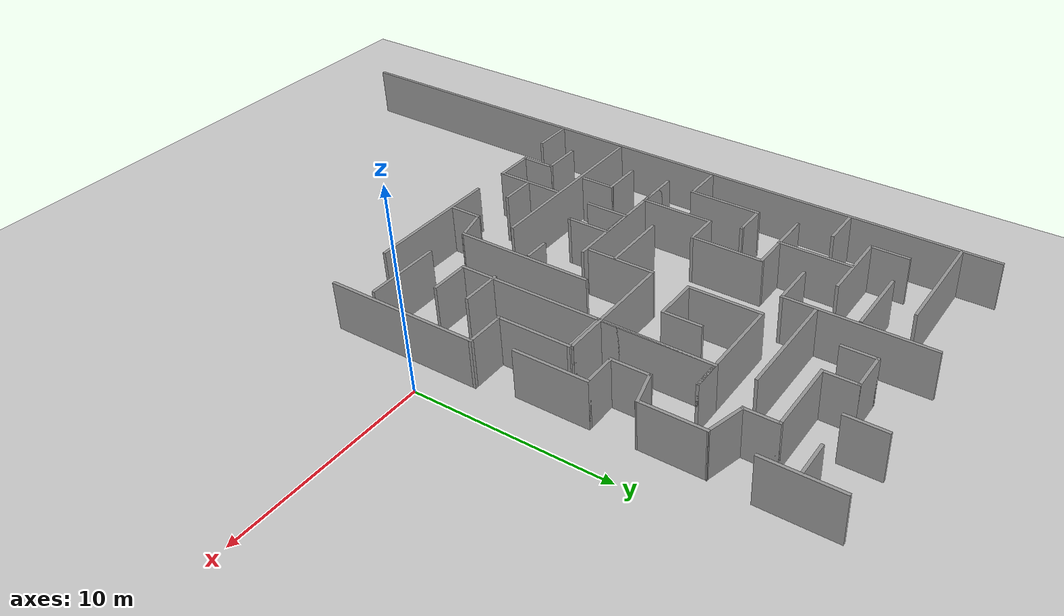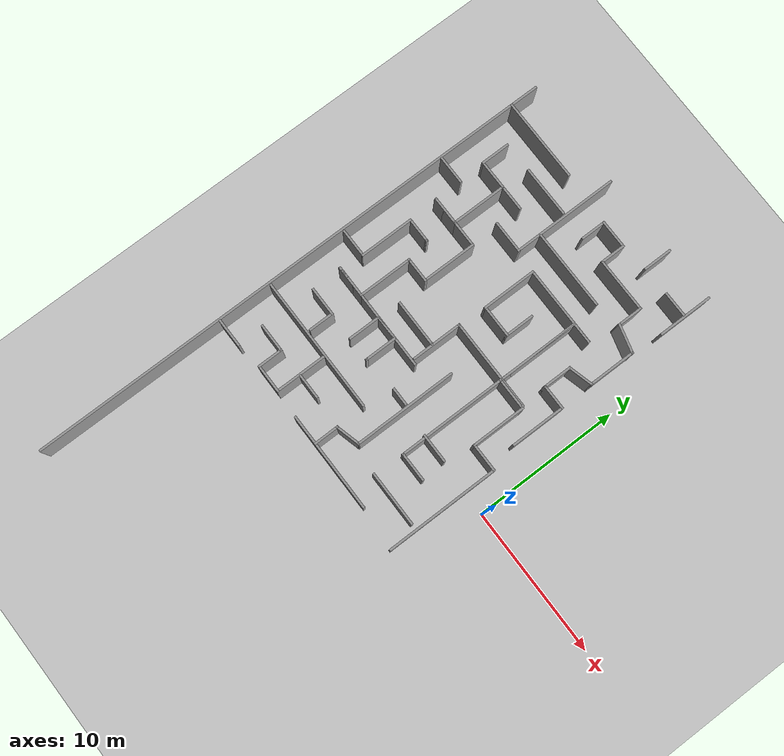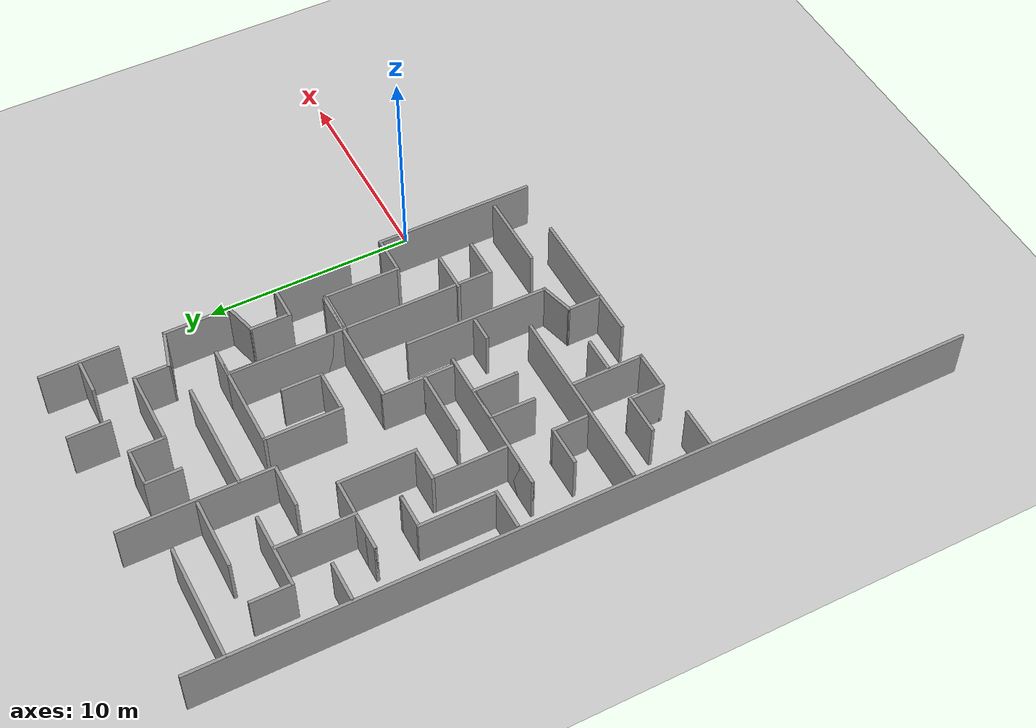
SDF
<sdf version="1.7">
 <world name="default">
  <model name="ground_plane">
   <static>1</static>
   <link name="link">
    <collision name="collision">
     <geometry><plane><normal>0 0 1</normal><size>100 100</size></plane></geometry>
     <surface>
      <contact><collide_bitmask>65535</collide_bitmask></contact>
      <friction><ode><mu>100</mu><mu2>50</mu2></ode></friction>
     </surface>
    </collision>
    <visual name="visual">
     <cast_shadows>0</cast_shadows>
     <geometry><plane><normal>0 0 1</normal><size>100 100</size></plane></geometry>
     <material>
      <script><uri>file://media/materials/scripts/gazebo.material</uri><name>Gazebo/Grey</name></script>
     </material>
    </visual>
   </link>
  </model>
  <model name="maze">
   <pose>-0.086607 -0.007324 0 0 -0 0</pose>
   <link name="Wall_109">
    <collision name="Wall_109_Collision">
     <geometry><box><size>7.75 0.15 2.5</size></box></geometry>
     <pose>0 0 1.25 0 -0 0</pose>
    </collision>
    <visual name="Wall_109_Visual">
     <pose>0 0 1.25 0 -0 0</pose>
     <geometry><box><size>7.75 0.15 2.5</size></box></geometry>
     <material>
      <script><uri>file://media/materials/scripts/gazebo.material</uri><name>Gazebo/Grey</name></script>
      <ambient>1 1 1 1</ambient>
     </material>
     <meta><layer>0</layer></meta>
    </visual>
    <pose>-1.50629 -1.81933 0 0 -0 1.5708</pose>
   </link>
   <link name="Wall_11">
    <collision name="Wall_11_Collision">
     <geometry><box><size>3.75 0.15 2.5</size></box></geometry>
     <pose>0 0 1.25 0 -0 0</pose>
    </collision>
    <visual name="Wall_11_Visual">
     <pose>0 0 1.25 0 -0 0</pose>
     <geometry><box><size>3.75 0.15 2.5</size></box></geometry>
     <material>
      <script><uri>file://media/materials/scripts/gazebo.material</uri><name>Gazebo/Grey</name></script>
      <ambient>1 1 1 1</ambient>
     </material>
     <meta><layer>0</layer></meta>
    </visual>
    <pose>-14.6968 11.1408 0 0 -0 -1.5708</pose>
   </link>
   <link name="Wall_110">
    <collision name="Wall_110_Collision">
     <geometry><box><size>2 0.15 2.5</size></box></geometry>
     <pose>0 0 1.25 0 -0 0</pose>
    </collision>
    <visual name="Wall_110_Visual">
     <pose>0 0 1.25 0 -0 0</pose>
     <geometry><box><size>2 0.15 2.5</size></box></geometry>
     <material>
      <script><uri>file://media/materials/scripts/gazebo.material</uri><name>Gazebo/Grey</name></script>
      <ambient>1 1 1 1</ambient>
     </material>
     <meta><layer>0</layer></meta>
    </visual>
    <pose>-2.43129 1.98067 0 0 -0 3.14159</pose>
   </link>
   <link name="Wall_111">
    <collision name="Wall_111_Collision">
     <geometry><box><size>3.75 0.15 2.5</size></box></geometry>
     <pose>0 0 1.25 0 -0 0</pose>
    </collision>
    <visual name="Wall_111_Visual">
     <pose>0 0 1.25 0 -0 0</pose>
     <geometry><box><size>3.75 0.15 2.5</size></box></geometry>
     <material>
      <script><uri>file://media/materials/scripts/gazebo.material</uri><name>Gazebo/Grey</name></script>
      <ambient>1 1 1 1</ambient>
     </material>
     <meta><layer>0</layer></meta>
    </visual>
    <pose>-3.35629 3.78067 0 0 -0 1.5708</pose>
   </link>
   <link name="Wall_112">
    <collision name="Wall_112_Collision">
     <geometry><box><size>2.25 0.15 2.5</size></box></geometry>
     <pose>0 0 1.25 0 -0 0</pose>
    </collision>
    <visual name="Wall_112_Visual">
     <pose>0 0 1.25 0 -0 0</pose>
     <geometry><box><size>2.25 0.15 2.5</size></box></geometry>
     <material>
      <script><uri>file://media/materials/scripts/gazebo.material</uri><name>Gazebo/Grey</name></script>
      <ambient>1 1 1 1</ambient>
     </material>
     <meta><layer>0</layer></meta>
    </visual>
    <pose>-4.40629 5.58067 0 0 -0 3.14159</pose>
   </link>
   <link name="Wall_113">
    <collision name="Wall_113_Collision">
     <geometry><box><size>5.75 0.15 2.5</size></box></geometry>
     <pose>0 0 1.25 0 -0 0</pose>
    </collision>
    <visual name="Wall_113_Visual">
     <pose>0 0 1.25 0 -0 0</pose>
     <geometry><box><size>5.75 0.15 2.5</size></box></geometry>
     <material>
      <script><uri>file://media/materials/scripts/gazebo.material</uri><name>Gazebo/Grey</name></script>
      <ambient>1 1 1 1</ambient>
     </material>
     <meta><layer>0</layer></meta>
    </visual>
    <pose>-5.45629 8.38067 0 0 -0 1.5708</pose>
   </link>
   <link name="Wall_114">
    <collision name="Wall_114_Collision">
     <geometry><box><size>1.5 0.15 2.5</size></box></geometry>
     <pose>0 0 1.25 0 -0 0</pose>
    </collision>
    <visual name="Wall_114_Visual">
     <pose>0 0 1.25 0 -0 0</pose>
     <geometry><box><size>1.5 0.15 2.5</size></box></geometry>
     <material>
      <script><uri>file://media/materials/scripts/gazebo.material</uri><name>Gazebo/Grey</name></script>
      <ambient>1 1 1 1</ambient>
     </material>
     <meta><layer>0</layer></meta>
    </visual>
    <pose>-4.78129 11.1807 0 0 -0 0</pose>
   </link>
   <link name="Wall_115">
    <collision name="Wall_115_Collision">
     <geometry><box><size>5.5 0.15 2.5</size></box></geometry>
     <pose>0 0 1.25 0 -0 0</pose>
    </collision>
    <visual name="Wall_115_Visual">
     <pose>0 0 1.25 0 -0 0</pose>
     <geometry><box><size>5.5 0.15 2.5</size></box></geometry>
     <material>
      <script><uri>file://media/materials/scripts/gazebo.material</uri><name>Gazebo/Grey</name></script>
      <ambient>1 1 1 1</ambient>
     </material>
     <meta><layer>0</layer></meta>
    </visual>
    <pose>-6.78129 11.1807 0 0 -0 3.14159</pose>
   </link>
   <link name="Wall_116">
    <collision name="Wall_116_Collision">
     <geometry><box><size>3.75 0.15 2.5</size></box></geometry>
     <pose>0 0 1.25 0 -0 0</pose>
    </collision>
    <visual name="Wall_116_Visual">
     <pose>0 0 1.25 0 -0 0</pose>
     <geometry><box><size>3.75 0.15 2.5</size></box></geometry>
     <material>
      <script><uri>file://media/materials/scripts/gazebo.material</uri><name>Gazebo/Grey</name></script>
      <ambient>1 1 1 1</ambient>
     </material>
     <meta><layer>0</layer></meta>
    </visual>
    <pose>-9.45629 9.38067 0 0 -0 -1.5708</pose>
   </link>
   <link name="Wall_117">
    <collision name="Wall_117_Collision">
     <geometry><box><size>2.25 0.15 2.5</size></box></geometry>
     <pose>0 0 1.25 0 -0 0</pose>
    </collision>
    <visual name="Wall_117_Visual">
     <pose>0 0 1.25 0 -0 0</pose>
     <geometry><box><size>2.25 0.15 2.5</size></box></geometry>
     <material>
      <script><uri>file://media/materials/scripts/gazebo.material</uri><name>Gazebo/Grey</name></script>
      <ambient>1 1 1 1</ambient>
     </material>
     <meta><layer>0</layer></meta>
    </visual>
    <pose>-8.40629 7.58067 0 0 -0 0</pose>
   </link>
   <link name="Wall_118">
    <collision name="Wall_118_Collision">
     <geometry><box><size>2 0.15 2.5</size></box></geometry>
     <pose>0 0 1.25 0 -0 0</pose>
    </collision>
    <visual name="Wall_118_Visual">
     <pose>0 0 1.25 0 -0 0</pose>
     <geometry><box><size>2 0.15 2.5</size></box></geometry>
     <material>
      <script><uri>file://media/materials/scripts/gazebo.material</uri><name>Gazebo/Grey</name></script>
      <ambient>1 1 1 1</ambient>
     </material>
     <meta><layer>0</layer></meta>
    </visual>
    <pose>-7.35629 8.50567 0 0 -0 1.5708</pose>
   </link>
   <link name="Wall_12">
    <collision name="Wall_12_Collision">
     <geometry><box><size>2 0.15 2.5</size></box></geometry>
     <pose>0 0 1.25 0 -0 0</pose>
    </collision>
    <visual name="Wall_12_Visual">
     <pose>0 0 1.25 0 -0 0</pose>
     <geometry><box><size>2 0.15 2.5</size></box></geometry>
     <material>
      <script><uri>file://media/materials/scripts/gazebo.material</uri><name>Gazebo/Grey</name></script>
      <ambient>1 1 1 1</ambient>
     </material>
     <meta><layer>0</layer></meta>
    </visual>
    <pose>-15.6218 9.34077 0 0 -0 3.14159</pose>
   </link>
   <link name="Wall_120">
    <collision name="Wall_120_Collision">
     <geometry><box><size>6.75 0.15 2.5</size></box></geometry>
     <pose>0 0 1.25 0 -0 0</pose>
    </collision>
    <visual name="Wall_120_Visual">
     <pose>0 0 1.25 0 -0 0</pose>
     <geometry><box><size>6.75 0.15 2.5</size></box></geometry>
     <material>
      <script><uri>file://media/materials/scripts/gazebo.material</uri><name>Gazebo/Grey</name></script>
      <ambient>1 1 1 1</ambient>
     </material>
     <meta><layer>0</layer></meta>
    </visual>
    <pose>-7.73365 -5.37864 0 0 -0 3.14159</pose>
   </link>
   <link name="Wall_123">
    <collision name="Wall_123_Collision">
     <geometry><box><size>1.75 0.15 2.5</size></box></geometry>
     <pose>0 0 1.25 0 -0 0</pose>
    </collision>
    <visual name="Wall_123_Visual">
     <pose>0 0 1.25 0 -0 0</pose>
     <geometry><box><size>1.75 0.15 2.5</size></box></geometry>
     <material>
      <script><uri>file://media/materials/scripts/gazebo.material</uri><name>Gazebo/Grey</name></script>
      <ambient>1 1 1 1</ambient>
     </material>
     <meta><layer>0</layer></meta>
    </visual>
    <pose>-9.08336 -4.57864 0 0 -0 1.5708</pose>
   </link>
   <link name="Wall_124">
    <collision name="Wall_124_Collision">
     <geometry><box><size>1.75 0.15 2.5</size></box></geometry>
     <pose>0 0 1.25 0 -0 0</pose>
    </collision>
    <visual name="Wall_124_Visual">
     <pose>0 0 1.25 0 -0 0</pose>
     <geometry><box><size>1.75 0.15 2.5</size></box></geometry>
     <material>
      <script><uri>file://media/materials/scripts/gazebo.material</uri><name>Gazebo/Grey</name></script>
      <ambient>1 1 1 1</ambient>
     </material>
     <meta><layer>0</layer></meta>
    </visual>
    <pose>-8.31062 -3.57159 0 0 -0 0.261799</pose>
   </link>
   <link name="Wall_125">
    <collision name="Wall_125_Collision">
     <geometry><box><size>7 0.15 2.5</size></box></geometry>
     <pose>0 0 1.25 0 -0 0</pose>
    </collision>
    <visual name="Wall_125_Visual">
     <pose>0 0 1.25 0 -0 0</pose>
     <geometry><box><size>7 0.15 2.5</size></box></geometry>
     <material>
      <script><uri>file://media/materials/scripts/gazebo.material</uri><name>Gazebo/Grey</name></script>
      <ambient>1 1 1 1</ambient>
     </material>
     <meta><layer>0</layer></meta>
    </visual>
    <pose>-7.53788 0.060469 0 0 -0 1.5708</pose>
   </link>
   <link name="Wall_127">
    <collision name="Wall_127_Collision">
     <geometry><box><size>1.25 0.15 2.5</size></box></geometry>
     <pose>0 0 1.25 0 -0 0</pose>
    </collision>
    <visual name="Wall_127_Visual">
     <pose>0 0 1.25 0 -0 0</pose>
     <geometry><box><size>1.25 0.15 2.5</size></box></geometry>
     <material>
      <script><uri>file://media/materials/scripts/gazebo.material</uri><name>Gazebo/Grey</name></script>
      <ambient>1 1 1 1</ambient>
     </material>
     <meta><layer>0</layer></meta>
    </visual>
    <pose>-8.28864 0.24996 0 0 -0 0</pose>
   </link>
   <link name="Wall_13">
    <collision name="Wall_13_Collision">
     <geometry><box><size>3.75 0.15 2.5</size></box></geometry>
     <pose>0 0 1.25 0 -0 0</pose>
    </collision>
    <visual name="Wall_13_Visual">
     <pose>0 0 1.25 0 -0 0</pose>
     <geometry><box><size>3.75 0.15 2.5</size></box></geometry>
     <material>
      <script><uri>file://media/materials/scripts/gazebo.material</uri><name>Gazebo/Grey</name></script>
      <ambient>1 1 1 1</ambient>
     </material>
     <meta><layer>0</layer></meta>
    </visual>
    <pose>-14.7468 9.34077 0 0 -0 0</pose>
   </link>
   <link name="Wall_130">
    <collision name="Wall_130_Collision">
     <geometry><box><size>3.5 0.15 2.5</size></box></geometry>
     <pose>0 0 1.25 0 -0 0</pose>
    </collision>
    <visual name="Wall_130_Visual">
     <pose>0 0 1.25 0 -0 0</pose>
     <geometry><box><size>3.5 0.15 2.5</size></box></geometry>
     <material>
      <script><uri>file://media/materials/scripts/gazebo.material</uri><name>Gazebo/Grey</name></script>
      <ambient>1 1 1 1</ambient>
     </material>
     <meta><layer>0</layer></meta>
    </visual>
    <pose>-9.57281 4.0051 0 0 -0 1.5708</pose>
   </link>
   <link name="Wall_131">
    <collision name="Wall_131_Collision">
     <geometry><box><size>6.25 0.15 2.5</size></box></geometry>
     <pose>0 0 1.25 0 -0 0</pose>
    </collision>
    <visual name="Wall_131_Visual">
     <pose>0 0 1.25 0 -0 0</pose>
     <geometry><box><size>6.25 0.15 2.5</size></box></geometry>
     <material>
      <script><uri>file://media/materials/scripts/gazebo.material</uri><name>Gazebo/Grey</name></script>
      <ambient>1 1 1 1</ambient>
     </material>
     <meta><layer>0</layer></meta>
    </visual>
    <pose>-6.5228 5.6801 0 0 -0 0</pose>
   </link>
   <link name="Wall_132">
    <collision name="Wall_132_Collision">
     <geometry><box><size>0.16 0.15 2.5</size></box></geometry>
     <pose>0 0 1.25 0 -0 0</pose>
    </collision>
    <visual name="Wall_132_Visual">
     <pose>0 0 1.25 0 -0 0</pose>
     <geometry><box><size>0.16 0.15 2.5</size></box></geometry>
     <material>
      <script><uri>file://media/materials/scripts/gazebo.material</uri><name>Gazebo/Grey</name></script>
      <ambient>1 1 1 1</ambient>
     </material>
     <meta><layer>0</layer></meta>
    </visual>
    <pose>-3.4678 5.6801 0 0 -0 0</pose>
   </link>
   <link name="Wall_134">
    <collision name="Wall_134_Collision">
     <geometry><box><size>3.25 0.15 2.5</size></box></geometry>
     <pose>0 0 1.25 0 -0 0</pose>
    </collision>
    <visual name="Wall_134_Visual">
     <pose>0 0 1.25 0 -0 0</pose>
     <geometry><box><size>3.25 0.15 2.5</size></box></geometry>
     <material>
      <script><uri>file://media/materials/scripts/gazebo.material</uri><name>Gazebo/Grey</name></script>
      <ambient>1 1 1 1</ambient>
     </material>
     <meta><layer>0</layer></meta>
    </visual>
    <pose>-11.2042 3.67607 0 0 -0 0</pose>
   </link>
   <link name="Wall_135">
    <collision name="Wall_135_Collision">
     <geometry><box><size>0.16 0.15 2.5</size></box></geometry>
     <pose>0 0 1.25 0 -0 0</pose>
    </collision>
    <visual name="Wall_135_Visual">
     <pose>0 0 1.25 0 -0 0</pose>
     <geometry><box><size>0.16 0.15 2.5</size></box></geometry>
     <material>
      <script><uri>file://media/materials/scripts/gazebo.material</uri><name>Gazebo/Grey</name></script>
      <ambient>1 1 1 1</ambient>
     </material>
     <meta><layer>0</layer></meta>
    </visual>
    <pose>-9.64919 3.67607 0 0 -0 0</pose>
   </link>
   <link name="Wall_136">
    <collision name="Wall_136_Collision">
     <geometry><box><size>0.16 0.15 2.5</size></box></geometry>
     <pose>0 0 1.25 0 -0 0</pose>
    </collision>
    <visual name="Wall_136_Visual">
     <pose>0 0 1.25 0 -0 0</pose>
     <geometry><box><size>0.16 0.15 2.5</size></box></geometry>
     <material>
      <script><uri>file://media/materials/scripts/gazebo.material</uri><name>Gazebo/Grey</name></script>
      <ambient>1 1 1 1</ambient>
     </material>
     <meta><layer>0</layer></meta>
    </visual>
    <pose>-9.63919 3.67607 0 0 -0 0</pose>
   </link>
   <link name="Wall_138">
    <collision name="Wall_138_Collision">
     <geometry><box><size>7.25 0.15 2.5</size></box></geometry>
     <pose>0 0 1.25 0 -0 0</pose>
    </collision>
    <visual name="Wall_138_Visual">
     <pose>0 0 1.25 0 -0 0</pose>
     <geometry><box><size>7.25 0.15 2.5</size></box></geometry>
     <material>
      <script><uri>file://media/materials/scripts/gazebo.material</uri><name>Gazebo/Grey</name></script>
      <ambient>1 1 1 1</ambient>
     </material>
     <meta><layer>0</layer></meta>
    </visual>
    <pose>-11.002 14.8809 0 0 -0 -1.5708</pose>
   </link>
   <link name="Wall_139">
    <collision name="Wall_139_Collision">
     <geometry><box><size>2.25 0.15 2.5</size></box></geometry>
     <pose>0 0 1.25 0 -0 0</pose>
    </collision>
    <visual name="Wall_139_Visual">
     <pose>0 0 1.25 0 -0 0</pose>
     <geometry><box><size>2.25 0.15 2.5</size></box></geometry>
     <material>
      <script><uri>file://media/materials/scripts/gazebo.material</uri><name>Gazebo/Grey</name></script>
      <ambient>1 1 1 1</ambient>
     </material>
     <meta><layer>0</layer></meta>
    </visual>
    <pose>-12.052 11.3309 0 0 -0 3.14159</pose>
   </link>
   <link name="Wall_14">
    <collision name="Wall_14_Collision">
     <geometry><box><size>3.75 0.15 2.5</size></box></geometry>
     <pose>0 0 1.25 0 -0 0</pose>
    </collision>
    <visual name="Wall_14_Visual">
     <pose>0 0 1.25 0 -0 0</pose>
     <geometry><box><size>3.75 0.15 2.5</size></box></geometry>
     <material>
      <script><uri>file://media/materials/scripts/gazebo.material</uri><name>Gazebo/Grey</name></script>
      <ambient>1 1 1 1</ambient>
     </material>
     <meta><layer>0</layer></meta>
    </visual>
    <pose>-12.9468 7.54077 0 0 -0 -1.5708</pose>
   </link>
   <link name="Wall_141">
    <collision name="Wall_141_Collision">
     <geometry><box><size>5.5 0.15 2.5</size></box></geometry>
     <pose>0 0 1.25 0 -0 0</pose>
    </collision>
    <visual name="Wall_141_Visual">
     <pose>0 0 1.25 0 -0 0</pose>
     <geometry><box><size>5.5 0.15 2.5</size></box></geometry>
     <material>
      <script><uri>file://media/materials/scripts/gazebo.material</uri><name>Gazebo/Grey</name></script>
      <ambient>1 1 1 1</ambient>
     </material>
     <meta><layer>0</layer></meta>
    </visual>
    <pose>-8.28079 12.9721 0 0 -0 0</pose>
   </link>
   <link name="Wall_143">
    <collision name="Wall_143_Collision">
     <geometry><box><size>3.5 0.15 2.5</size></box></geometry>
     <pose>0 0 1.25 0 -0 0</pose>
    </collision>
    <visual name="Wall_143_Visual">
     <pose>0 0 1.25 0 -0 0</pose>
     <geometry><box><size>3.5 0.15 2.5</size></box></geometry>
     <material>
      <script><uri>file://media/materials/scripts/gazebo.material</uri><name>Gazebo/Grey</name></script>
      <ambient>1 1 1 1</ambient>
     </material>
     <meta><layer>0</layer></meta>
    </visual>
    <pose>-12.8892 14.9151 0 0 -0 0</pose>
   </link>
   <link name="Wall_145">
    <collision name="Wall_145_Collision">
     <geometry><box><size>5.71184 0.15 2.5</size></box></geometry>
     <pose>0 0 1.25 0 -0 0</pose>
    </collision>
    <visual name="Wall_145_Visual">
     <pose>0 0 1.25 0 -0 0</pose>
     <geometry><box><size>5.71184 0.15 2.5</size></box></geometry>
     <material>
      <script><uri>file://media/materials/scripts/gazebo.material</uri><name>Gazebo/Grey</name></script>
      <ambient>1 1 1 1</ambient>
     </material>
     <meta><layer>0</layer></meta>
    </visual>
    <pose>-15.6587 16.6836 0 0 -0 0</pose>
   </link>
   <link name="Wall_147">
    <collision name="Wall_147_Collision">
     <geometry><box><size>1.75 0.15 2.5</size></box></geometry>
     <pose>0 0 1.25 0 -0 0</pose>
    </collision>
    <visual name="Wall_147_Visual">
     <pose>0 0 1.25 0 -0 0</pose>
     <geometry><box><size>1.75 0.15 2.5</size></box></geometry>
     <material>
      <script><uri>file://media/materials/scripts/gazebo.material</uri><name>Gazebo/Grey</name></script>
      <ambient>1 1 1 1</ambient>
     </material>
     <meta><layer>0</layer></meta>
    </visual>
    <pose>-9.25332 15.6895 0 0 -0 1.5708</pose>
   </link>
   <link name="Wall_148">
    <collision name="Wall_148_Collision">
     <geometry><box><size>2 0.15 2.5</size></box></geometry>
     <pose>0 0 1.25 0 -0 0</pose>
    </collision>
    <visual name="Wall_148_Visual">
     <pose>0 0 1.25 0 -0 0</pose>
     <geometry><box><size>2 0.15 2.5</size></box></geometry>
     <material>
      <script><uri>file://media/materials/scripts/gazebo.material</uri><name>Gazebo/Grey</name></script>
      <ambient>1 1 1 1</ambient>
     </material>
     <meta><layer>0</layer></meta>
    </visual>
    <pose>-8.32832 16.4895 0 0 -0 0</pose>
   </link>
   <link name="Wall_149">
    <collision name="Wall_149_Collision">
     <geometry><box><size>1.75 0.15 2.5</size></box></geometry>
     <pose>0 0 1.25 0 -0 0</pose>
    </collision>
    <visual name="Wall_149_Visual">
     <pose>0 0 1.25 0 -0 0</pose>
     <geometry><box><size>1.75 0.15 2.5</size></box></geometry>
     <material>
      <script><uri>file://media/materials/scripts/gazebo.material</uri><name>Gazebo/Grey</name></script>
      <ambient>1 1 1 1</ambient>
     </material>
     <meta><layer>0</layer></meta>
    </visual>
    <pose>-7.40332 15.6895 0 0 -0 -1.5708</pose>
   </link>
   <link name="Wall_15">
    <collision name="Wall_15_Collision">
     <geometry><box><size>1.75 0.15 2.5</size></box></geometry>
     <pose>0 0 1.25 0 -0 0</pose>
    </collision>
    <visual name="Wall_15_Visual">
     <pose>0 0 1.25 0 -0 0</pose>
     <geometry><box><size>1.75 0.15 2.5</size></box></geometry>
     <material>
      <script><uri>file://media/materials/scripts/gazebo.material</uri><name>Gazebo/Grey</name></script>
      <ambient>1 1 1 1</ambient>
     </material>
     <meta><layer>0</layer></meta>
    </visual>
    <pose>-13.7468 5.74077 0 0 -0 3.14159</pose>
   </link>
   <link name="Wall_150">
    <collision name="Wall_150_Collision">
     <geometry><box><size>3.75 0.15 2.5</size></box></geometry>
     <pose>0 0 1.25 0 -0 0</pose>
    </collision>
    <visual name="Wall_150_Visual">
     <pose>0 0 1.25 0 -0 0</pose>
     <geometry><box><size>3.75 0.15 2.5</size></box></geometry>
     <material>
      <script><uri>file://media/materials/scripts/gazebo.material</uri><name>Gazebo/Grey</name></script>
      <ambient>1 1 1 1</ambient>
     </material>
     <meta><layer>0</layer></meta>
    </visual>
    <pose>-5.60332 14.8895 0 0 -0 0</pose>
   </link>
   <link name="Wall_151">
    <collision name="Wall_151_Collision">
     <geometry><box><size>1.75 0.15 2.5</size></box></geometry>
     <pose>0 0 1.25 0 -0 0</pose>
    </collision>
    <visual name="Wall_151_Visual">
     <pose>0 0 1.25 0 -0 0</pose>
     <geometry><box><size>1.75 0.15 2.5</size></box></geometry>
     <material>
      <script><uri>file://media/materials/scripts/gazebo.material</uri><name>Gazebo/Grey</name></script>
      <ambient>1 1 1 1</ambient>
     </material>
     <meta><layer>0</layer></meta>
    </visual>
    <pose>-3.80332 14.0895 0 0 -0 -1.5708</pose>
   </link>
   <link name="Wall_152">
    <collision name="Wall_152_Collision">
     <geometry><box><size>2 0.15 2.5</size></box></geometry>
     <pose>0 0 1.25 0 -0 0</pose>
    </collision>
    <visual name="Wall_152_Visual">
     <pose>0 0 1.25 0 -0 0</pose>
     <geometry><box><size>2 0.15 2.5</size></box></geometry>
     <material>
      <script><uri>file://media/materials/scripts/gazebo.material</uri><name>Gazebo/Grey</name></script>
      <ambient>1 1 1 1</ambient>
     </material>
     <meta><layer>0</layer></meta>
    </visual>
    <pose>-2.90984 13.0501 0 0 -0 -0.261799</pose>
   </link>
   <link name="Wall_153">
    <collision name="Wall_153_Collision">
     <geometry><box><size>3.25 0.15 2.5</size></box></geometry>
     <pose>0 0 1.25 0 -0 0</pose>
    </collision>
    <visual name="Wall_153_Visual">
     <pose>0 0 1.25 0 -0 0</pose>
     <geometry><box><size>3.25 0.15 2.5</size></box></geometry>
     <material>
      <script><uri>file://media/materials/scripts/gazebo.material</uri><name>Gazebo/Grey</name></script>
      <ambient>1 1 1 1</ambient>
     </material>
     <meta><layer>0</layer></meta>
    </visual>
    <pose>-2.01636 11.2607 0 0 -0 -1.5708</pose>
   </link>
   <link name="Wall_154">
    <collision name="Wall_154_Collision">
     <geometry><box><size>1.75 0.15 2.5</size></box></geometry>
     <pose>0 0 1.25 0 -0 0</pose>
    </collision>
    <visual name="Wall_154_Visual">
     <pose>0 0 1.25 0 -0 0</pose>
     <geometry><box><size>1.75 0.15 2.5</size></box></geometry>
     <material>
      <script><uri>file://media/materials/scripts/gazebo.material</uri><name>Gazebo/Grey</name></script>
      <ambient>1 1 1 1</ambient>
     </material>
     <meta><layer>0</layer></meta>
    </visual>
    <pose>-2.7891 9.50364 0 0 -0 -2.87979</pose>
   </link>
   <link name="Wall_155">
    <collision name="Wall_155_Collision">
     <geometry><box><size>2 0.15 2.5</size></box></geometry>
     <pose>0 0 1.25 0 -0 0</pose>
    </collision>
    <visual name="Wall_155_Visual">
     <pose>0 0 1.25 0 -0 0</pose>
     <geometry><box><size>2 0.15 2.5</size></box></geometry>
     <material>
      <script><uri>file://media/materials/scripts/gazebo.material</uri><name>Gazebo/Grey</name></script>
      <ambient>1 1 1 1</ambient>
     </material>
     <meta><layer>0</layer></meta>
    </visual>
    <pose>-3.56184 8.37159 0 0 -0 -1.5708</pose>
   </link>
   <link name="Wall_156">
    <collision name="Wall_156_Collision">
     <geometry><box><size>1.75 0.15 2.5</size></box></geometry>
     <pose>0 0 1.25 0 -0 0</pose>
    </collision>
    <visual name="Wall_156_Visual">
     <pose>0 0 1.25 0 -0 0</pose>
     <geometry><box><size>1.75 0.15 2.5</size></box></geometry>
     <material>
      <script><uri>file://media/materials/scripts/gazebo.material</uri><name>Gazebo/Grey</name></script>
      <ambient>1 1 1 1</ambient>
     </material>
     <meta><layer>0</layer></meta>
    </visual>
    <pose>-2.76184 7.44659 0 0 -0 0</pose>
   </link>
   <link name="Wall_157">
    <collision name="Wall_157_Collision">
     <geometry><box><size>3.75 0.15 2.5</size></box></geometry>
     <pose>0 0 1.25 0 -0 0</pose>
    </collision>
    <visual name="Wall_157_Visual">
     <pose>0 0 1.25 0 -0 0</pose>
     <geometry><box><size>3.75 0.15 2.5</size></box></geometry>
     <material>
      <script><uri>file://media/materials/scripts/gazebo.material</uri><name>Gazebo/Grey</name></script>
      <ambient>1 1 1 1</ambient>
     </material>
     <meta><layer>0</layer></meta>
    </visual>
    <pose>-1.96184 5.64659 0 0 -0 -1.5708</pose>
   </link>
   <link name="Wall_16">
    <collision name="Wall_16_Collision">
     <geometry><box><size>3.75 0.15 2.5</size></box></geometry>
     <pose>0 0 1.25 0 -0 0</pose>
    </collision>
    <visual name="Wall_16_Visual">
     <pose>0 0 1.25 0 -0 0</pose>
     <geometry><box><size>3.75 0.15 2.5</size></box></geometry>
     <material>
      <script><uri>file://media/materials/scripts/gazebo.material</uri><name>Gazebo/Grey</name></script>
      <ambient>1 1 1 1</ambient>
     </material>
     <meta><layer>0</layer></meta>
    </visual>
    <pose>-14.5468 3.94077 0 0 -0 -1.5708</pose>
   </link>
   <link name="Wall_17">
    <collision name="Wall_17_Collision">
     <geometry><box><size>2.25 0.15 2.5</size></box></geometry>
     <pose>0 0 1.25 0 -0 0</pose>
    </collision>
    <visual name="Wall_17_Visual">
     <pose>0 0 1.25 0 -0 0</pose>
     <geometry><box><size>2.25 0.15 2.5</size></box></geometry>
     <material>
      <script><uri>file://media/materials/scripts/gazebo.material</uri><name>Gazebo/Grey</name></script>
      <ambient>1 1 1 1</ambient>
     </material>
     <meta><layer>0</layer></meta>
    </visual>
    <pose>-15.5968 2.14077 0 0 -0 3.14159</pose>
   </link>
   <link name="Wall_18">
    <collision name="Wall_18_Collision">
     <geometry><box><size>7.5 0.15 2.5</size></box></geometry>
     <pose>0 0 1.25 0 -0 0</pose>
    </collision>
    <visual name="Wall_18_Visual">
     <pose>0 0 1.25 0 -0 0</pose>
     <geometry><box><size>7.5 0.15 2.5</size></box></geometry>
     <material>
      <script><uri>file://media/materials/scripts/gazebo.material</uri><name>Gazebo/Grey</name></script>
      <ambient>1 1 1 1</ambient>
     </material>
     <meta><layer>0</layer></meta>
    </visual>
    <pose>-12.9718 2.14077 0 0 -0 0</pose>
   </link>
   <link name="Wall_20">
    <collision name="Wall_20_Collision">
     <geometry><box><size>2 0.15 2.5</size></box></geometry>
     <pose>0 0 1.25 0 -0 0</pose>
    </collision>
    <visual name="Wall_20_Visual">
     <pose>0 0 1.25 0 -0 0</pose>
     <geometry><box><size>2 0.15 2.5</size></box></geometry>
     <material>
      <script><uri>file://media/materials/scripts/gazebo.material</uri><name>Gazebo/Grey</name></script>
      <ambient>1 1 1 1</ambient>
     </material>
     <meta><layer>0</layer></meta>
    </visual>
    <pose>-17.3747 3.70602 0 0 -0 0</pose>
   </link>
   <link name="Wall_207">
    <collision name="Wall_207_Collision">
     <geometry><box><size>3.75 0.15 2.5</size></box></geometry>
     <pose>0 0 1.25 0 -0 0</pose>
    </collision>
    <visual name="Wall_207_Visual">
     <pose>0 0 1.25 0 -0 0</pose>
     <geometry><box><size>3.75 0.15 2.5</size></box></geometry>
     <material>
      <script><uri>file://media/materials/scripts/gazebo.material</uri><name>Gazebo/Grey</name></script>
      <ambient>1 1 1 1</ambient>
     </material>
     <meta><layer>0</layer></meta>
    </visual>
    <pose>-1.82988 16.7364 0 0 -0 -1.5708</pose>
   </link>
   <link name="Wall_21">
    <collision name="Wall_21_Collision">
     <geometry><box><size>3.75 0.15 2.5</size></box></geometry>
     <pose>0 0 1.25 0 -0 0</pose>
    </collision>
    <visual name="Wall_21_Visual">
     <pose>0 0 1.25 0 -0 0</pose>
     <geometry><box><size>3.75 0.15 2.5</size></box></geometry>
     <material>
      <script><uri>file://media/materials/scripts/gazebo.material</uri><name>Gazebo/Grey</name></script>
      <ambient>1 1 1 1</ambient>
     </material>
     <meta><layer>0</layer></meta>
    </visual>
    <pose>-16.4497 5.50602 0 0 -0 1.5708</pose>
   </link>
   <link name="Wall_211">
    <collision name="Wall_211_Collision">
     <geometry><box><size>2 0.15 2.5</size></box></geometry>
     <pose>0 0 1.25 0 -0 0</pose>
    </collision>
    <visual name="Wall_211_Visual">
     <pose>0 0 1.25 0 -0 0</pose>
     <geometry><box><size>2 0.15 2.5</size></box></geometry>
     <material>
      <script><uri>file://media/materials/scripts/gazebo.material</uri><name>Gazebo/Grey</name></script>
      <ambient>1 1 1 1</ambient>
     </material>
     <meta><layer>0</layer></meta>
    </visual>
    <pose>-5.50071 17.6114 0 0 -0 -1.5708</pose>
   </link>
   <link name="Wall_213">
    <collision name="Wall_213_Collision">
     <geometry><box><size>1.75 0.15 2.5</size></box></geometry>
     <pose>0 0 1.25 0 -0 0</pose>
    </collision>
    <visual name="Wall_213_Visual">
     <pose>0 0 1.25 0 -0 0</pose>
     <geometry><box><size>1.75 0.15 2.5</size></box></geometry>
     <material>
      <script><uri>file://media/materials/scripts/gazebo.material</uri><name>Gazebo/Grey</name></script>
      <ambient>1 1 1 1</ambient>
     </material>
     <meta><layer>0</layer></meta>
    </visual>
    <pose>-2.74294 16.701 0 0 -0 0</pose>
   </link>
   <link name="Wall_22">
    <collision name="Wall_22_Collision">
     <geometry><box><size>1.75 0.15 2.5</size></box></geometry>
     <pose>0 0 1.25 0 -0 0</pose>
    </collision>
    <visual name="Wall_22_Visual">
     <pose>0 0 1.25 0 -0 0</pose>
     <geometry><box><size>1.75 0.15 2.5</size></box></geometry>
     <material>
      <script><uri>file://media/materials/scripts/gazebo.material</uri><name>Gazebo/Grey</name></script>
      <ambient>1 1 1 1</ambient>
     </material>
     <meta><layer>0</layer></meta>
    </visual>
    <pose>-15.6497 7.30602 0 0 -0 0</pose>
   </link>
   <link name="Wall_23">
    <collision name="Wall_23_Collision">
     <geometry><box><size>0.16 0.15 2.5</size></box></geometry>
     <pose>0 0 1.25 0 -0 0</pose>
    </collision>
    <visual name="Wall_23_Visual">
     <pose>0 0 1.25 0 -0 0</pose>
     <geometry><box><size>0.16 0.15 2.5</size></box></geometry>
     <material>
      <script><uri>file://media/materials/scripts/gazebo.material</uri><name>Gazebo/Grey</name></script>
      <ambient>1 1 1 1</ambient>
     </material>
     <meta><layer>0</layer></meta>
    </visual>
    <pose>-14.8447 7.30602 0 0 -0 0</pose>
   </link>
   <link name="Wall_233">
    <collision name="Wall_233_Collision">
     <geometry><box><size>3.75 0.15 2.5</size></box></geometry>
     <pose>0 0 1.25 0 -0 0</pose>
    </collision>
    <visual name="Wall_233_Visual">
     <pose>0 0 1.25 0 -0 0</pose>
     <geometry><box><size>3.75 0.15 2.5</size></box></geometry>
     <material>
      <script><uri>file://media/materials/scripts/gazebo.material</uri><name>Gazebo/Grey</name></script>
      <ambient>1 1 1 1</ambient>
     </material>
     <meta><layer>0</layer></meta>
    </visual>
    <pose>-3.76189 -3.73328 0 0 -0 0</pose>
   </link>
   <link name="Wall_235">
    <collision name="Wall_235_Collision">
     <geometry><box><size>13 0.15 2.5</size></box></geometry>
     <pose>0 0 1.25 0 -0 0</pose>
    </collision>
    <visual name="Wall_235_Visual">
     <pose>0 0 1.25 0 -0 0</pose>
     <geometry><box><size>13 0.15 2.5</size></box></geometry>
     <material>
      <script><uri>file://media/materials/scripts/gazebo.material</uri><name>Gazebo/Grey</name></script>
      <ambient>1 1 1 1</ambient>
     </material>
     <meta><layer>0</layer></meta>
    </visual>
    <pose>-5.45629 4.75567 0 0 -0 -1.5708</pose>
   </link>
   <link name="Wall_237">
    <collision name="Wall_237_Collision">
     <geometry><box><size>2 0.15 2.5</size></box></geometry>
     <pose>0 0 1.25 0 -0 0</pose>
    </collision>
    <visual name="Wall_237_Visual">
     <pose>0 0 1.25 0 -0 0</pose>
     <geometry><box><size>2 0.15 2.5</size></box></geometry>
     <material>
      <script><uri>file://media/materials/scripts/gazebo.material</uri><name>Gazebo/Grey</name></script>
      <ambient>1 1 1 1</ambient>
     </material>
     <meta><layer>0</layer></meta>
    </visual>
    <pose>-4.63689 -0.001268 0 0 -0 0</pose>
   </link>
   <link name="Wall_239">
    <collision name="Wall_239_Collision">
     <geometry><box><size>2 0.15 2.5</size></box></geometry>
     <pose>0 0 1.25 0 -0 0</pose>
    </collision>
    <visual name="Wall_239_Visual">
     <pose>0 0 1.25 0 -0 0</pose>
     <geometry><box><size>2 0.15 2.5</size></box></geometry>
     <material>
      <script><uri>file://media/materials/scripts/gazebo.material</uri><name>Gazebo/Grey</name></script>
      <ambient>1 1 1 1</ambient>
     </material>
     <meta><layer>0</layer></meta>
    </visual>
    <pose>-4.53129 -1.66933 0 0 -0 0</pose>
   </link>
   <link name="Wall_25">
    <collision name="Wall_25_Collision">
     <geometry><box><size>2 0.15 2.5</size></box></geometry>
     <pose>0 0 1.25 0 -0 0</pose>
    </collision>
    <visual name="Wall_25_Visual">
     <pose>0 0 1.25 0 -0 0</pose>
     <geometry><box><size>2 0.15 2.5</size></box></geometry>
     <material>
      <script><uri>file://media/materials/scripts/gazebo.material</uri><name>Gazebo/Grey</name></script>
      <ambient>1 1 1 1</ambient>
     </material>
     <meta><layer>0</layer></meta>
    </visual>
    <pose>-17.4447 11.1918 0 0 -0 0</pose>
   </link>
   <link name="Wall_27">
    <collision name="Wall_27_Collision">
     <geometry><box><size>9.25 0.15 2.5</size></box></geometry>
     <pose>0 0 1.25 0 -0 0</pose>
    </collision>
    <visual name="Wall_27_Visual">
     <pose>0 0 1.25 0 -0 0</pose>
     <geometry><box><size>9.25 0.15 2.5</size></box></geometry>
     <material>
      <script><uri>file://media/materials/scripts/gazebo.material</uri><name>Gazebo/Grey</name></script>
      <ambient>1 1 1 1</ambient>
     </material>
     <meta><layer>0</layer></meta>
    </visual>
    <pose>-13.7497 -1.78586 0 0 -0 0</pose>
   </link>
   <link name="Wall_29">
    <collision name="Wall_29_Collision">
     <geometry><box><size>2 0.15 2.5</size></box></geometry>
     <pose>0 0 1.25 0 -0 0</pose>
    </collision>
    <visual name="Wall_29_Visual">
     <pose>0 0 1.25 0 -0 0</pose>
     <geometry><box><size>2 0.15 2.5</size></box></geometry>
     <material>
      <script><uri>file://media/materials/scripts/gazebo.material</uri><name>Gazebo/Grey</name></script>
      <ambient>1 1 1 1</ambient>
     </material>
     <meta><layer>0</layer></meta>
    </visual>
    <pose>-15.6257 0.068085 0 0 -0 0</pose>
   </link>
   <link name="Wall_30">
    <collision name="Wall_30_Collision">
     <geometry><box><size>1.75 0.15 2.5</size></box></geometry>
     <pose>0 0 1.25 0 -0 0</pose>
    </collision>
    <visual name="Wall_30_Visual">
     <pose>0 0 1.25 0 -0 0</pose>
     <geometry><box><size>1.75 0.15 2.5</size></box></geometry>
     <material>
      <script><uri>file://media/materials/scripts/gazebo.material</uri><name>Gazebo/Grey</name></script>
      <ambient>1 1 1 1</ambient>
     </material>
     <meta><layer>0</layer></meta>
    </visual>
    <pose>-14.7007 -0.731915 0 0 -0 -1.5708</pose>
   </link>
   <link name="Wall_32">
    <collision name="Wall_32_Collision">
     <geometry><box><size>2 0.15 2.5</size></box></geometry>
     <pose>0 0 1.25 0 -0 0</pose>
    </collision>
    <visual name="Wall_32_Visual">
     <pose>0 0 1.25 0 -0 0</pose>
     <geometry><box><size>2 0.15 2.5</size></box></geometry>
     <material>
      <script><uri>file://media/materials/scripts/gazebo.material</uri><name>Gazebo/Grey</name></script>
      <ambient>1 1 1 1</ambient>
     </material>
     <meta><layer>0</layer></meta>
    </visual>
    <pose>-15.6957 -3.67479 0 0 -0 0</pose>
   </link>
   <link name="Wall_33">
    <collision name="Wall_33_Collision">
     <geometry><box><size>1.75 0.15 2.5</size></box></geometry>
     <pose>0 0 1.25 0 -0 0</pose>
    </collision>
    <visual name="Wall_33_Visual">
     <pose>0 0 1.25 0 -0 0</pose>
     <geometry><box><size>1.75 0.15 2.5</size></box></geometry>
     <material>
      <script><uri>file://media/materials/scripts/gazebo.material</uri><name>Gazebo/Grey</name></script>
      <ambient>1 1 1 1</ambient>
     </material>
     <meta><layer>0</layer></meta>
    </visual>
    <pose>-14.7707 -4.47479 0 0 -0 -1.5708</pose>
   </link>
   <link name="Wall_34">
    <collision name="Wall_34_Collision">
     <geometry><box><size>2 0.15 2.5</size></box></geometry>
     <pose>0 0 1.25 0 -0 0</pose>
    </collision>
    <visual name="Wall_34_Visual">
     <pose>0 0 1.25 0 -0 0</pose>
     <geometry><box><size>2 0.15 2.5</size></box></geometry>
     <material>
      <script><uri>file://media/materials/scripts/gazebo.material</uri><name>Gazebo/Grey</name></script>
      <ambient>1 1 1 1</ambient>
     </material>
     <meta><layer>0</layer></meta>
    </visual>
    <pose>-13.8457 -5.27479 0 0 -0 0</pose>
   </link>
   <link name="Wall_35">
    <collision name="Wall_35_Collision">
     <geometry><box><size>3.5 0.15 2.5</size></box></geometry>
     <pose>0 0 1.25 0 -0 0</pose>
    </collision>
    <visual name="Wall_35_Visual">
     <pose>0 0 1.25 0 -0 0</pose>
     <geometry><box><size>3.5 0.15 2.5</size></box></geometry>
     <material>
      <script><uri>file://media/materials/scripts/gazebo.material</uri><name>Gazebo/Grey</name></script>
      <ambient>1 1 1 1</ambient>
     </material>
     <meta><layer>0</layer></meta>
    </visual>
    <pose>-12.9207 -3.59979 0 0 -0 1.5708</pose>
   </link>
   <link name="Wall_37">
    <collision name="Wall_37_Collision">
     <geometry><box><size>2.25 0.15 2.5</size></box></geometry>
     <pose>0 0 1.25 0 -0 0</pose>
    </collision>
    <visual name="Wall_37_Visual">
     <pose>0 0 1.25 0 -0 0</pose>
     <geometry><box><size>2.25 0.15 2.5</size></box></geometry>
     <material>
      <script><uri>file://media/materials/scripts/gazebo.material</uri><name>Gazebo/Grey</name></script>
      <ambient>1 1 1 1</ambient>
     </material>
     <meta><layer>0</layer></meta>
    </visual>
    <pose>-12.8428 1.0831 0 0 -0 1.5708</pose>
   </link>
   <link name="Wall_38">
    <collision name="Wall_38_Collision">
     <geometry><box><size>1.75 0.15 2.5</size></box></geometry>
     <pose>0 0 1.25 0 -0 0</pose>
    </collision>
    <visual name="Wall_38_Visual">
     <pose>0 0 1.25 0 -0 0</pose>
     <geometry><box><size>1.75 0.15 2.5</size></box></geometry>
     <material>
      <script><uri>file://media/materials/scripts/gazebo.material</uri><name>Gazebo/Grey</name></script>
      <ambient>1 1 1 1</ambient>
     </material>
     <meta><layer>0</layer></meta>
    </visual>
    <pose>-12.0428 2.13311 0 0 -0 0</pose>
   </link>
   <link name="Wall_39">
    <collision name="Wall_39_Collision">
     <geometry><box><size>2.25 0.15 2.5</size></box></geometry>
     <pose>0 0 1.25 0 -0 0</pose>
    </collision>
    <visual name="Wall_39_Visual">
     <pose>0 0 1.25 0 -0 0</pose>
     <geometry><box><size>2.25 0.15 2.5</size></box></geometry>
     <material>
      <script><uri>file://media/materials/scripts/gazebo.material</uri><name>Gazebo/Grey</name></script>
      <ambient>1 1 1 1</ambient>
     </material>
     <meta><layer>0</layer></meta>
    </visual>
    <pose>-11.2428 1.0831 0 0 -0 -1.5708</pose>
   </link>
   <link name="Wall_4">
    <collision name="Wall_4_Collision">
     <geometry><box><size>37.1243 0.15 2.5</size></box></geometry>
     <pose>0 0 1.25 0 -0 0</pose>
    </collision>
    <visual name="Wall_4_Visual">
     <pose>0 0 1.25 0 -0 0</pose>
     <geometry><box><size>37.1243 0.15 2.5</size></box></geometry>
     <material>
      <script><uri>file://media/materials/scripts/gazebo.material</uri><name>Gazebo/Grey</name></script>
      <ambient>1 1 1 1</ambient>
     </material>
     <meta><layer>0</layer></meta>
    </visual>
    <pose>-18.4874 0.053951 0 0 -0 1.56936</pose>
   </link>
   <link name="Wall_40">
    <collision name="Wall_40_Collision">
     <geometry><box><size>0.15 0.15 2.5</size></box></geometry>
     <pose>0 0 1.25 0 -0 0</pose>
    </collision>
    <visual name="Wall_40_Visual">
     <pose>0 0 1.25 0 -0 0</pose>
     <geometry><box><size>0.15 0.15 2.5</size></box></geometry>
     <material>
      <script><uri>file://media/materials/scripts/gazebo.material</uri><name>Gazebo/Grey</name></script>
      <ambient>1 1 1 1</ambient>
     </material>
     <meta><layer>0</layer></meta>
    </visual>
    <pose>-11.2428 0.033105 0 0 -0 0</pose>
   </link>
   <link name="Wall_42">
    <collision name="Wall_42_Collision">
     <geometry><box><size>1.75 0.15 2.5</size></box></geometry>
     <pose>0 0 1.25 0 -0 0</pose>
    </collision>
    <visual name="Wall_42_Visual">
     <pose>0 0 1.25 0 -0 0</pose>
     <geometry><box><size>1.75 0.15 2.5</size></box></geometry>
     <material>
      <script><uri>file://media/materials/scripts/gazebo.material</uri><name>Gazebo/Grey</name></script>
      <ambient>1 1 1 1</ambient>
     </material>
     <meta><layer>0</layer></meta>
    </visual>
    <pose>-12.0271 -3.66562 0 0 -0 0</pose>
   </link>
   <link name="Wall_44">
    <collision name="Wall_44_Collision">
     <geometry><box><size>2 0.15 2.5</size></box></geometry>
     <pose>0 0 1.25 0 -0 0</pose>
    </collision>
    <visual name="Wall_44_Visual">
     <pose>0 0 1.25 0 -0 0</pose>
     <geometry><box><size>2 0.15 2.5</size></box></geometry>
     <material>
      <script><uri>file://media/materials/scripts/gazebo.material</uri><name>Gazebo/Grey</name></script>
      <ambient>1 1 1 1</ambient>
     </material>
     <meta><layer>0</layer></meta>
    </visual>
    <pose>-17.4685 -5.49067 0 0 -0 0</pose>
   </link>
   <link name="Wall_6">
    <collision name="Wall_6_Collision">
     <geometry><box><size>5.71184 0.15 2.5</size></box></geometry>
     <pose>0 0 1.25 0 -0 0</pose>
    </collision>
    <visual name="Wall_6_Visual">
     <pose>0 0 1.25 0 -0 0</pose>
     <geometry><box><size>5.71184 0.15 2.5</size></box></geometry>
     <material>
      <script><uri>file://media/materials/scripts/gazebo.material</uri><name>Gazebo/Grey</name></script>
      <ambient>1 1 1 1</ambient>
     </material>
     <meta><layer>0</layer></meta>
    </visual>
    <pose>-15.6587 16.6836 0 0 -0 0</pose>
   </link>
   <link name="Wall_8">
    <collision name="Wall_8_Collision">
     <geometry><box><size>2 0.15 2.5</size></box></geometry>
     <pose>0 0 1.25 0 -0 0</pose>
    </collision>
    <visual name="Wall_8_Visual">
     <pose>0 0 1.25 0 -0 0</pose>
     <geometry><box><size>2 0.15 2.5</size></box></geometry>
     <material>
      <script><uri>file://media/materials/scripts/gazebo.material</uri><name>Gazebo/Grey</name></script>
      <ambient>1 1 1 1</ambient>
     </material>
     <meta><layer>0</layer></meta>
    </visual>
    <pose>-16.6207 13.9397 0 0 -0 -1.5708</pose>
   </link>
   <link name="Wall_9">
    <collision name="Wall_9_Collision">
     <geometry><box><size>3.75 0.15 2.5</size></box></geometry>
     <pose>0 0 1.25 0 -0 0</pose>
    </collision>
    <visual name="Wall_9_Visual">
     <pose>0 0 1.25 0 -0 0</pose>
     <geometry><box><size>3.75 0.15 2.5</size></box></geometry>
     <material>
      <script><uri>file://media/materials/scripts/gazebo.material</uri><name>Gazebo/Grey</name></script>
      <ambient>1 1 1 1</ambient>
     </material>
     <meta><layer>0</layer></meta>
    </visual>
    <pose>-14.8207 13.0147 0 0 -0 0</pose>
   </link>
   <static>1</static>
  </model>
 </world>
</sdf>
